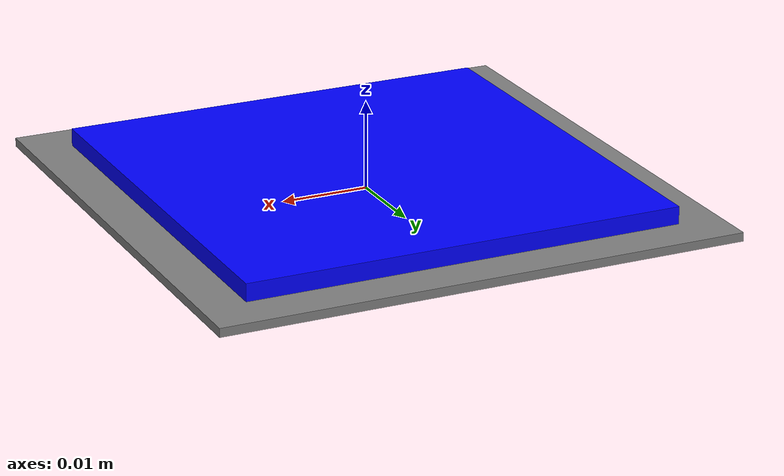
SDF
<?xml version="1.0" ?>
<sdf version="1.6">
  <model name="load_cell_robot">
    <static>false</static>
    <link name="sensor_base_link">
      <visual name="base_visual">
        <geometry>
          <box>
            <size>0.06 0.06 0.001</size> <!-- Reduced height to 1cm -->
          </box>
        </geometry>
        <material>
          <ambient>0.5 0.5 0.5 1</ambient>
          <diffuse>0.5 0.5 0.5 1</diffuse>
        </material>
      </visual>
      <collision name="base_collision">
        <geometry>
          <box>
            <size>0.06 0.06 0.001</size> <!-- Reduced height to 1cm -->
          </box>
        </geometry>
      </collision>
    </link>

    <link name="load_cell">
      <visual name="load_cell_visual">
        <geometry>
          <box>
            <size>0.05 0.05 0.005</size> <!-- Small box for load cell -->
          </box>
        </geometry>
        <material>
          <ambient>0 0 1 1</ambient>
          <diffuse>0 0 1 1</diffuse>
        </material>
      </visual>
      <collision name="load_cell_collision">
        <geometry>
          <box>
            <size>0.05 0.05 0.005</size> <!-- Small box for load cell -->
          </box>
        </geometry>
      </collision>
    </link>

    <joint name="load_cell_joint" type="fixed">
      <parent>sensor_base_link</parent>
      <child>load_cell</child>
      <pose>0 0 0.005 0 0 0</pose> <!-- Place load cell on the surface -->
    </joint>

    <sensor name="load_cell_sensor" type="force_torque">
      <always_on>true</always_on>
      <update_rate>50.0</update_rate>
      <force_torque>
        <frame>child</frame>
        <measure_direction>child_to_parent</measure_direction>
      </force_torque>
      <plugin name="gazebo_ros_ft_sensor" filename="libgazebo_ros_ft_sensor.so">
        <robotNamespace>/rx200</robotNamespace>
        <alwaysOn>true</alwaysOn>
        <updateRate>50.0</updateRate>
        <sensorName>load_cell_sensor</sensorName>
        <topicName>load_cell_sensor</topicName> <!-- Explicit Topic Name -->
      </plugin>
    </sensor>
  </model>
</sdf>
